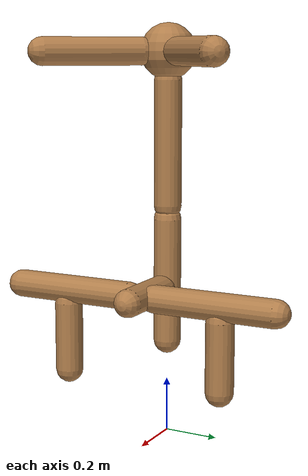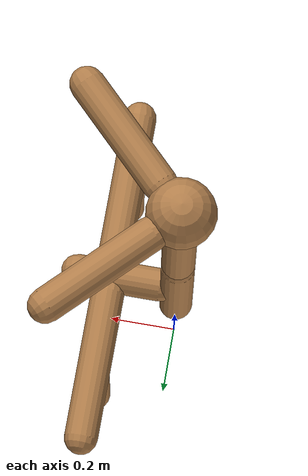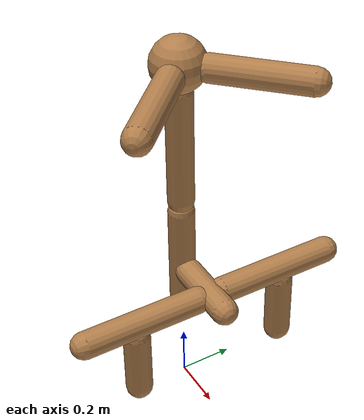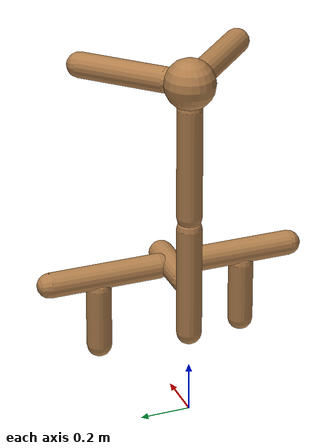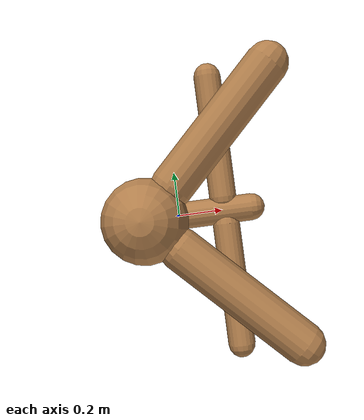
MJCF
<?xml version='1.0' encoding='UTF-8'?>
<!-- Universal Animal Template: unimal -->
<mujoco model="unimal">
  <compiler angle="degree"/>
  <size njmax="2000" nconmax="500"/>
  <option timestep=".005">
    <flag filterparent="disable"/>
  </option>
  <!-- Common defaults to make search space tractable -->
  <default>
    <!-- Define motor defaults -->
    <motor ctrlrange="-1 1" ctrllimited="true"/>
    <!-- Define joint defaults -->
    <default class="normal_joint">
      <joint type="hinge" damping="1" stiffness="1" armature="1" limited="true" range="-120 120" solimplimit="0 0.99 0.01"/>
    </default>
    <default class="walker_joint">
      <joint type="hinge" damping="0.2" stiffness="1" armature=".01" limited="true" range="-120 120" solimplimit="0 0.99 0.01"/>
    </default>
    <default class="stiff_joint">
      <joint type="hinge" damping="5" stiffness="10" armature=".01" limited="true" solimplimit="0 0.99 0.01"/>
    </default>
    <default class="free">
      <joint limited="false" damping="0" armature="0" stiffness="0"/>
    </default>
    <default class="growth_site">
      <site size="1e-6 1e-6 1e-6"/>
    </default>
    <default class="torso_growth_site">
      <site size="1e-6 1e-6 1e-6"/>
    </default>
    <default class="mirror_growth_site">
      <site size="1e-6 1e-6 1e-6"/>
    </default>
    <default class="btm_pos_site">
      <site size="1e-6 1e-6 1e-6"/>
    </default>
    <default class="box_face_site">
      <site size="1e-6 1e-6 1e-6"/>
    </default>
    <default class="imu_vel">
      <site type="box" size="0.05" rgba="1 0 0 0"/>
    </default>
    <default class="touch_site">
      <site group="3" rgba="0 0 1 .3"/>
    </default>
    <default class="food_site">
      <site material="food" size="0.15"/>
    </default>
    <!-- Define geom defaults -->
    <geom type="capsule" condim="3" friction="0.7 0.1 0.1" material="self"/>
  </default>
  <worldbody>
    <light diffuse="1 1 1" directional="true" exponent="1" pos="0 0 8" specular="0.1 0.1 0.1" dir="0 0 -1"/>
    <!-- Programatically generated xml goes here -->
    <body name="torso/0" pos="0 0 1.4">
      <joint name="root" type="free" class="free"/>
      <site name="root" class="imu_vel"/>
      <geom name="torso/0" type="sphere" size="0.1" condim="3" density="800"/>
      <camera name="side" pos="0 -7 2" xyaxes="1 0 0 0 1 2" mode="trackcom"/>
      <site name="torso/0" class="growth_site" pos="0 0 0"/>
      <site name="torso/btm_pos/0" class="btm_pos_site" pos="0 0 -0.1"/>
      <site name="torso/touch/0" class="touch_site" size="0.11"/>
      <site name="torso/horizontal_y/0" class="torso_growth_site" pos="-0.1 0 0"/>
      <body name="limb/0" pos="0.0 0.0 -0.1">
        <joint name="limbx/0" type="hinge" class="normal_joint" range="0 60" pos="0.0 0.0 0.05" axis="1.0 0.0 0.0"/>
        <joint name="limby/0" type="hinge" class="normal_joint" range="-30 60" pos="0.0 0.0 0.05" axis="0.0 1.0 0.0"/>
        <geom name="limb/0" type="capsule" fromto="0.0 0.0 0.0 0.0 0.0 -0.45" size="0.05" density="500"/>
        <site name="limb/mid/0" class="growth_site" pos="0.0 0.0 -0.25"/>
        <site name="limb/btm/0" class="growth_site" pos="0.0 0.0 -0.45"/>
        <site name="limb/btm_pos/0" class="btm_pos_site" pos="0.0 0.0 -0.45"/>
        <site name="limb/touch/0" class="touch_site" size="0.060000000000000005" fromto="0.0 0.0 0.0 0.0 0.0 -0.45" type="capsule"/>
        <body name="limb/7" pos="0.0 0.0 -0.5">
          <joint name="limbx/7" type="hinge" class="normal_joint" range="-30 30" pos="0.0 0.0 0.05" axis="1.0 0.0 0.0"/>
          <joint name="limby/7" type="hinge" class="normal_joint" range="-90 0" pos="0.0 0.0 0.05" axis="0.0 1.0 0.0"/>
          <geom name="limb/7" type="capsule" fromto="0.0 0.0 0.0 0.0 0.0 -0.45" size="0.05" density="500"/>
          <site name="limb/mid/7" class="growth_site" pos="0.0 0.0 -0.25"/>
          <site name="limb/btm/7" class="growth_site" pos="0.0 0.0 -0.45"/>
          <site name="limb/btm_pos/7" class="btm_pos_site" pos="0.0 0.0 -0.45"/>
          <site name="limb/touch/7" class="touch_site" size="0.060000000000000005" fromto="0.0 0.0 0.0 0.0 0.0 -0.45" type="capsule"/>
          <body name="limb/8" pos="0.05 0.0 -0.25">
            <joint name="limbx/8" type="hinge" class="normal_joint" range="-45 45" pos="-0.05 0.0 0.0" axis="0.0 0.0 1.0"/>
            <joint name="limby/8" type="hinge" class="normal_joint" range="-60 30" pos="-0.05 0.0 0.0" axis="-0.0 1.0 0.0"/>
            <geom name="limb/8" type="capsule" fromto="0.0 0.0 0.0 0.25 0.0 0.0" size="0.05" density="500"/>
            <site name="limb/mid/8" class="growth_site" pos="0.15 0.0 0.0"/>
            <site name="limb/btm/8" class="growth_site" pos="0.25 0.0 0.0"/>
            <site name="limb/btm_pos/8" class="btm_pos_site" pos="0.3 0.0 0.0"/>
            <site name="limb/touch/8" class="touch_site" size="0.060000000000000005" fromto="0.0 0.0 0.0 0.25 0.0 0.0" type="capsule"/>
            <body name="limb/10" pos="0.15 0.05 0.0">
              <joint name="limbx/10" type="hinge" class="normal_joint" range="-60 30" pos="0.0 -0.05 0.0" axis="1.0 0.0 0.0"/>
              <joint name="limby/10" type="hinge" class="normal_joint" range="-60 0" pos="0.0 -0.05 0.0" axis="0.0 0.0 1.0"/>
              <geom name="limb/10" type="capsule" fromto="0.0 0.0 0.0 0.0 0.45 0.0" size="0.05" density="500"/>
              <site name="limb/mid/10" class="mirror_growth_site" pos="0.0 0.25 0.0"/>
              <site name="limb/btm/10" class="mirror_growth_site" pos="0.0 0.45 0.0"/>
              <site name="limb/btm_pos/10" class="btm_pos_site" pos="0.0 0.5 0.0"/>
              <site name="limb/touch/10" class="touch_site" size="0.060000000000000005" fromto="0.0 0.0 0.0 0.0 0.45 0.0" type="capsule"/>
              <body name="limb/12" pos="0.0 0.25 -0.05">
                <joint name="limbx/12" type="hinge" class="normal_joint" range="0 30" pos="0.0 0.0 0.05" axis="1.0 0.0 0.0"/>
                <geom name="limb/12" type="capsule" fromto="0.0 0.0 0.0 0.0 0.0 -0.25" size="0.05" density="500"/>
                <site name="limb/mid/12" class="mirror_growth_site" pos="0.0 0.0 -0.15"/>
                <site name="limb/btm/12" class="mirror_growth_site" pos="0.0 0.0 -0.25"/>
                <site name="limb/btm_pos/12" class="btm_pos_site" pos="0.0 0.0 -0.3"/>
                <site name="limb/touch/12" class="touch_site" size="0.060000000000000005" fromto="0.0 0.0 0.0 0.0 0.0 -0.25" type="capsule"/>
              </body>
            </body>
            <body name="limb/11" pos="0.15 -0.05 0.0">
              <joint name="limbx/11" type="hinge" class="normal_joint" range="-60 30" pos="0.0 0.05 0.0" axis="1.0 0.0 -0.0"/>
              <joint name="limby/11" type="hinge" class="normal_joint" range="-60 0" pos="0.0 0.05 0.0" axis="-0.0 0.0 -1.0"/>
              <geom name="limb/11" type="capsule" fromto="0.0 0.0 0.0 0.0 -0.45 0.0" size="0.05" density="500"/>
              <site name="limb/mid/11" class="mirror_growth_site" pos="0.0 -0.25 0.0"/>
              <site name="limb/btm/11" class="mirror_growth_site" pos="0.0 -0.45 0.0"/>
              <site name="limb/btm_pos/11" class="btm_pos_site" pos="0.0 -0.5 0.0"/>
              <site name="limb/touch/11" class="touch_site" size="0.060000000000000005" fromto="0.0 0.0 0.0 0.0 -0.45 0.0" type="capsule"/>
              <body name="limb/13" pos="0.0 -0.25 -0.05">
                <joint name="limbx/13" type="hinge" class="normal_joint" range="0 30" pos="0.0 0.0 0.05" axis="1.0 0.0 0.0"/>
                <geom name="limb/13" type="capsule" fromto="0.0 0.0 0.0 0.0 0.0 -0.25" size="0.05" density="500"/>
                <site name="limb/mid/13" class="mirror_growth_site" pos="0.0 0.0 -0.15"/>
                <site name="limb/btm/13" class="mirror_growth_site" pos="0.0 0.0 -0.25"/>
                <site name="limb/btm_pos/13" class="btm_pos_site" pos="0.0 0.0 -0.3"/>
                <site name="limb/touch/13" class="touch_site" size="0.060000000000000005" fromto="0.0 0.0 0.0 0.0 0.0 -0.25" type="capsule"/>
              </body>
            </body>
          </body>
        </body>
      </body>
      <body name="limb/14" pos="0.07 0.07 0.0">
        <joint name="limbx/14" type="hinge" class="normal_joint" range="0 60" pos="-0.04 -0.04 0.0" axis="0.5 -0.5 0.7071"/>
        <joint name="limby/14" type="hinge" class="normal_joint" range="0 30" pos="-0.04 -0.04 0.0" axis="-0.5 0.5 0.7071"/>
        <geom name="limb/14" type="capsule" fromto="0.0 0.0 0.0 0.25 0.25 0.0" size="0.05" density="500"/>
        <site name="limb/mid/14" class="mirror_growth_site" pos="0.14 0.14 0.0"/>
        <site name="limb/btm/14" class="mirror_growth_site" pos="0.25 0.25 0.0"/>
        <site name="limb/btm_pos/14" class="btm_pos_site" pos="0.28 0.28 0.0"/>
        <site name="limb/touch/14" class="touch_site" size="0.060000000000000005" fromto="0.0 0.0 0.0 0.25 0.25 0.0" type="capsule"/>
      </body>
      <body name="limb/15" pos="0.07 -0.07 0.0">
        <joint name="limbx/15" type="hinge" class="normal_joint" range="0 60" pos="-0.04 0.04 0.0" axis="0.5 0.5 0.7071"/>
        <joint name="limby/15" type="hinge" class="normal_joint" range="0 30" pos="-0.04 0.04 0.0" axis="0.5 0.5 -0.7071"/>
        <geom name="limb/15" type="capsule" fromto="0.0 0.0 0.0 0.25 -0.25 0.0" size="0.05" density="500"/>
        <site name="limb/mid/15" class="mirror_growth_site" pos="0.14 -0.14 0.0"/>
        <site name="limb/btm/15" class="mirror_growth_site" pos="0.25 -0.25 0.0"/>
        <site name="limb/btm_pos/15" class="btm_pos_site" pos="0.28 -0.28 0.0"/>
        <site name="limb/touch/15" class="touch_site" size="0.060000000000000005" fromto="0.0 0.0 0.0 0.25 -0.25 0.0" type="capsule"/>
      </body>
    </body>
  </worldbody>
  <actuator>
    <motor joint="limbx/0" gear="200" name="limbx/0"/>
    <motor joint="limby/0" gear="300" name="limby/0"/>
    <motor joint="limbx/7" gear="250" name="limbx/7"/>
    <motor joint="limby/7" gear="200" name="limby/7"/>
    <motor joint="limbx/8" gear="300" name="limbx/8"/>
    <motor joint="limby/8" gear="200" name="limby/8"/>
    <motor joint="limbx/10" gear="200" name="limbx/10"/>
    <motor joint="limby/10" gear="300" name="limby/10"/>
    <motor joint="limbx/12" gear="300" name="limbx/12"/>
    <motor joint="limbx/11" gear="200" name="limbx/11"/>
    <motor joint="limby/11" gear="300" name="limby/11"/>
    <motor joint="limbx/13" gear="300" name="limbx/13"/>
    <motor joint="limbx/14" gear="200" name="limbx/14"/>
    <motor joint="limby/14" gear="200" name="limby/14"/>
    <motor joint="limbx/15" gear="200" name="limbx/15"/>
    <motor joint="limby/15" gear="200" name="limby/15"/>
  </actuator>
  <sensor>
    <accelerometer name="torso_accel" site="root"/>
    <gyro name="torso_gyro" site="root"/>
    <velocimeter name="torso_vel" site="root"/>
    <subtreeangmom name="unimal_am" body="torso/0"/>
    <touch name="torso/0" site="torso/touch/0"/>
    <touch name="limb/0" site="limb/touch/0"/>
    <touch name="limb/7" site="limb/touch/7"/>
    <touch name="limb/8" site="limb/touch/8"/>
    <touch name="limb/10" site="limb/touch/10"/>
    <touch name="limb/12" site="limb/touch/12"/>
    <touch name="limb/11" site="limb/touch/11"/>
    <touch name="limb/13" site="limb/touch/13"/>
    <touch name="limb/14" site="limb/touch/14"/>
    <touch name="limb/15" site="limb/touch/15"/>
  </sensor>
  <!-- Add hfield assets -->
  <asset/>
  <!-- List of contacts to exclude -->
  <contact/>
  <!-- Define material, texture etc -->
  <asset>
    <material name="grid" texture="grid" texrepeat="1 1" texuniform="true" reflectance="0.1"/>
    <material name="hfield" texture="hfield" texrepeat="1 1" texuniform="true" reflectance="0.1"/>
    <material name="wall" texture="wall" texrepeat="1 1" texuniform="true" reflectance=".5"/>
    <material name="platform" texture="platform" texrepeat="1 1" texuniform="true" reflectance=".5"/>
    <material name="boundary" texture="boundary" texrepeat="1 1" texuniform="true" reflectance=".5"/>
    <material name="jump" texture="jump" texrepeat="1 1" texuniform="true" reflectance=".5"/>
    <material name="goal" rgba="1 0 0 1"/>
    <material name="food" rgba="0 0 1 1" emission="1"/>
    <material name="init_position" rgba="0 1 0 0.7"/>
    <material name="self" rgba=".7 .5 .3 1"/>
    <material name="self_invisible" rgba=".7 .5 .3 0"/>
    <material name="self_default" rgba=".7 .5 .3 1"/>
    <material name="self_highlight" rgba="0 .5 .3 1"/>
    <material name="effector" rgba=".7 .4 .2 1"/>
    <material name="effector_default" rgba=".7 .4 .2 1"/>
    <material name="effector_highlight" rgba="0 .5 .3 1"/>
    <material name="decoration" rgba=".3 .5 .7 1"/>
    <material name="eye" rgba="0 .2 1 1"/>
    <material name="target" rgba=".6 .3 .3 1"/>
    <material name="target_default" rgba=".6 .3 .3 1"/>
    <material name="target_highlight" rgba=".6 .3 .3 .4"/>
    <material name="site" rgba=".5 .5 .5 .3"/>
    <material name="ball" texture="ball"/>
  </asset>
  <asset>
    <texture name="grid" type="2d" builtin="checker" rgb1="0.4 0.4 0.4" rgb2="0.4 0.4 0.4" width="300" height="300" mark="edge" markrgb="0.2 0.2 0.2"/>
    <texture name="hfield" type="2d" builtin="checker" rgb1="0.4 0.4 0.4" rgb2="0.4 0.4 0.4" width="300" height="300" mark="edge" markrgb="0.2 0.2 0.2"/>
    <texture name="wall" type="2d" builtin="flat" rgb1="0.9 0.7 0" rgb2="0.9 0.7 0" width="300" height="300"/>
    <texture name="platform" type="2d" builtin="flat" rgb1="0.3 0 0.8" rgb2="0.3 0 0.8" width="300" height="300"/>
    <texture name="boundary" type="2d" builtin="flat" rgb1="0.3 0.3 0.3" rgb2="0.3 0.3 0.3" width="300" height="300"/>
    <texture name="jump" type="2d" builtin="flat" rgb1="0.3 0.3 0.3" rgb2="0.3 0.3 0.3" width="300" height="300"/>
    <texture name="skybox" type="skybox" builtin="gradient" rgb1="1 1 1" rgb2="0.6 0.6 0.6" width="800" height="800"/>
    <texture name="ball" builtin="checker" mark="cross" width="151" height="151" rgb1="0.1 0.1 0.1" rgb2="0.9 0.9 0.9" markrgb="1 1 1"/>
  </asset>
  <visual>
    <headlight ambient="0.6 0.6 0.6" diffuse="0.3 0.3 0.3" specular="0 0 0"/>
    <map znear=".01" shadowclip="0.5"/>
    <quality shadowsize="16384"/>
  </visual>
</mujoco>
